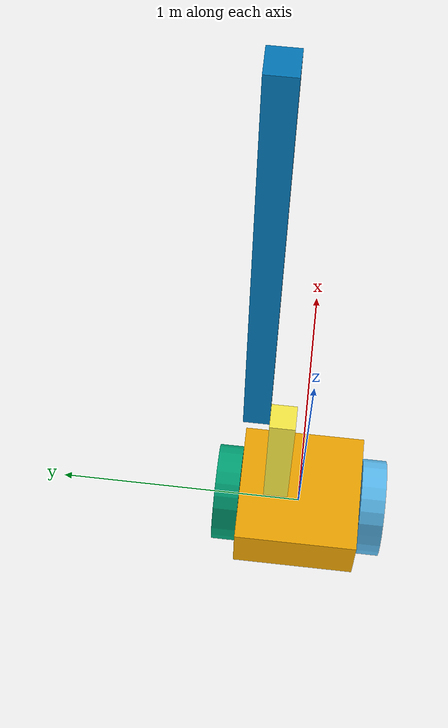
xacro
<?xml version='1.0'?>
<robot name="dd_robot">

  <!-- Base Link -->
  <link name="base_link">
    <visual>
      <origin xyz="0 0 0" rpy="0 0 0" />
      <geometry>
          <box size="0.5 0.5 0.25"/>
      </geometry>
    </visual>
  </link>

  <!-- Right Wheel -->
  <link name="right_wheel">
    <visual>
      <origin xyz="0 0 0" rpy="1.570795 0 0" />
      <geometry>
          <cylinder length="0.1" radius="0.2" />
      </geometry>
    </visual>
  </link>
  <joint name="joint_right_wheel" type="continuous">
    <parent link="base_link"/>
    <child link="right_wheel"/>
    <origin xyz="0 -0.30 0" rpy="0 0 0" />
    <axis xyz="0 1 0" />
  </joint>

  <!-- Left Wheel -->
  <link name="left_wheel">
    <visual>
      <origin xyz="0 0 0" rpy="1.570795 0 0" />
      <geometry>
          <cylinder length="0.1" radius="0.2" />
      </geometry>
    </visual>
  </link>
  <joint name="joint_left_wheel" type="continuous">
    <parent link="base_link"/>
    <child link="left_wheel"/>
    <origin xyz="0 0.30 0" rpy="0 0 0" />
    <axis xyz="0 1 0" />
  </joint>

  <!-- First Link -->
  <link name="first_link">
    <visual>
      <origin xyz="0 0 0.125" rpy="0 0 0"/>
      <geometry>
	<box size="0.1 0.1 1"/><!-- height=1, base is a square -->
      </geometry>
    </visual>
  </link>

 <!-- Joint between first Link and base Link -->
  <joint name="joint_fir_base" type="revolute">
    <parent link="base_link"/>
    <child link="first_link"/>
    <origin xyz="0 0.1 0.125" rpy="0 0 0"/>
    <axis xyz="0 1 0"/>
    <dynamics damping="0.7"/>
    <limit effort="100.0" velocity="0.5" lower="-3.14" upper="3.14" />
  </joint>

  <!-- Middle Link -->
  <link name="mid_link">
    <visual>
      <origin xyz="0 0 0.825" rpy="0 0 0"/>
      <geometry>
	<box size="0.1 0.1 2"/>
      </geometry>
    </visual>
  </link>
<!-- Joint between First Link and Middle Link -->
  <joint name="joint_fir_mid" type="revolute">
    <parent link="first_link"/>
    <child link="mid_link"/>
    <origin xyz="0 0.1 0.825" rpy="0 0 0"/>
    <axis xyz="0 1 0"/>
    <dynamics damping="0.7"/>
    <limit effort="100.0" velocity="0.5" lower="-3.14" upper="3.14" />
  </joint>

</robot>
